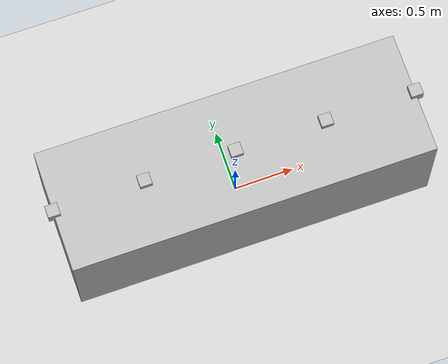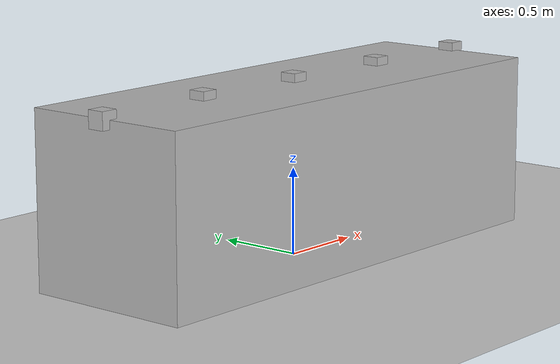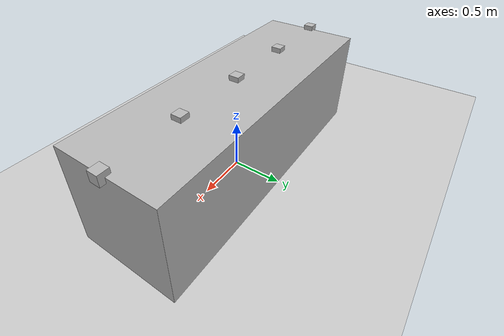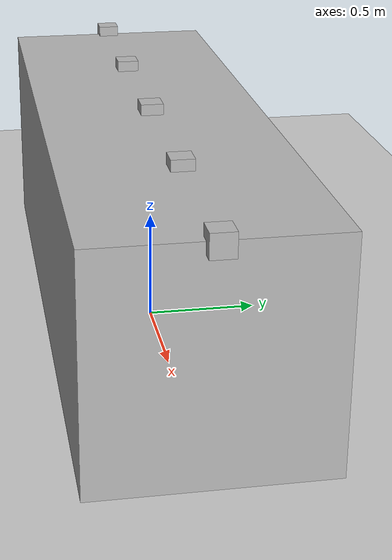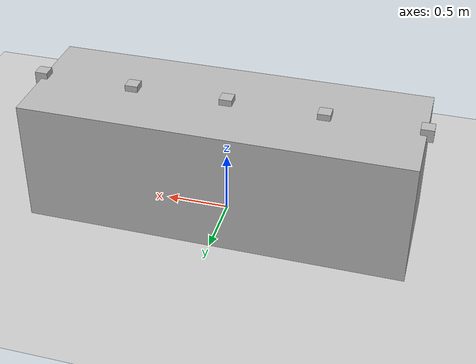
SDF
<?xml version="1.0" ?>
<sdf version="1.5">
  <world name="default">
    <!-- Ground -->
    <include>
      <uri>model://ground_plane</uri>
    </include>

    <model name="ledstrip">
      <plugin name="rgb_led" filename="libruvu_rgb_led_visual.so">
        <link>mount</link>
        <leds>
          <name>led1</name>
          <name>led2</name>
          <name>led3</name>
          <name>led4</name>
          <name>led5</name>
        </leds>
        <defaultColor>
          <r>1.0</r>
          <g>0</g>
          <b>1.0</b>
          <a>1.0</a>
        </defaultColor>
      </plugin>
      <pose>0 0 0.5 0 0 0</pose>
      <link name="mount">
        <visual name="mount">
          <geometry>
            <box>
              <size>3.0 1.0 1.0</size>
            </box>
          </geometry>
        </visual>

        <visual name="led1">
          <pose>-1.5 0 0.5 0 0 0</pose>
          <geometry>
            <box>
              <size>0.1 0.1 0.1</size>
            </box>
          </geometry>
        </visual>

        <visual name="led2">
          <pose>-0.75 0 0.5 0 0 0</pose>
          <geometry>
            <box>
              <size>0.1 0.1 0.1</size>
            </box>
          </geometry>
        </visual>

        <visual name="led3">
          <pose>0 0 0.5 0 0 0</pose>
          <geometry>
            <box>
              <size>0.1 0.1 0.1</size>
            </box>
          </geometry>
        </visual>

        <visual name="led4">
          <pose>0.75 0 0.5 0 0 0</pose>
          <geometry>
            <box>
              <size>0.1 0.1 0.1</size>
            </box>
          </geometry>
        </visual>

        <visual name="led5">
          <pose>1.5 0 0.5 0 0 0</pose>
          <geometry>
            <box>
              <size>0.1 0.1 0.1</size>
            </box>
          </geometry>
        </visual>
      </link>
    </model>

    <!-- A global light source -->
    <include>
      <uri>model://sun</uri>
    </include>
    <plugin name="disable_physics" filename="libruvu_disable_physics.so"/>
  </world>

</sdf>
